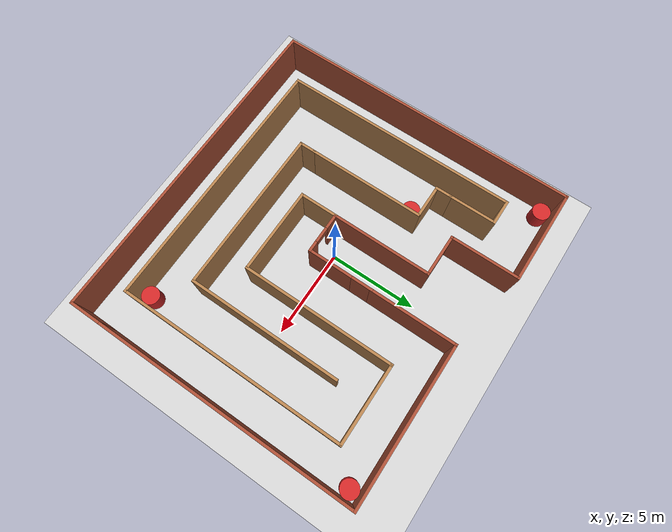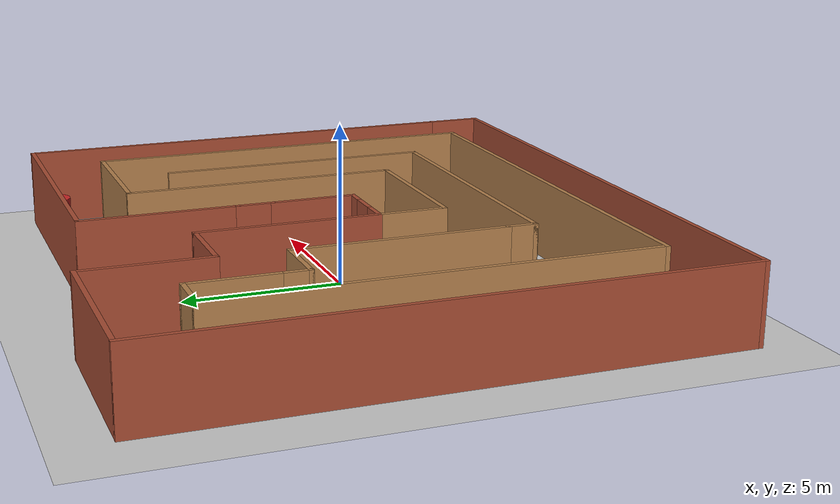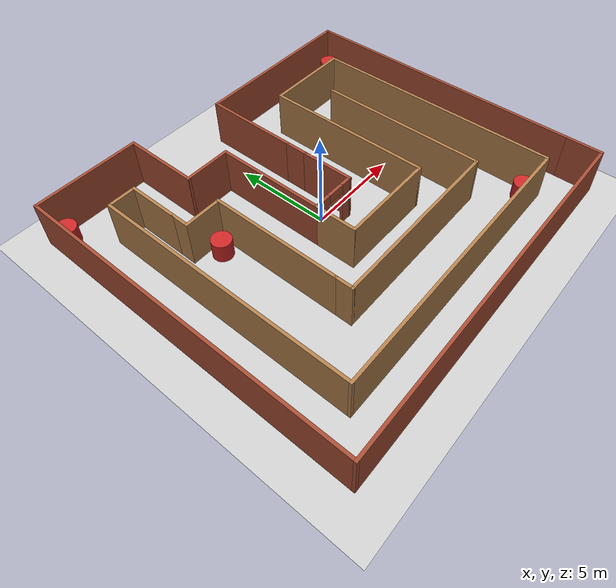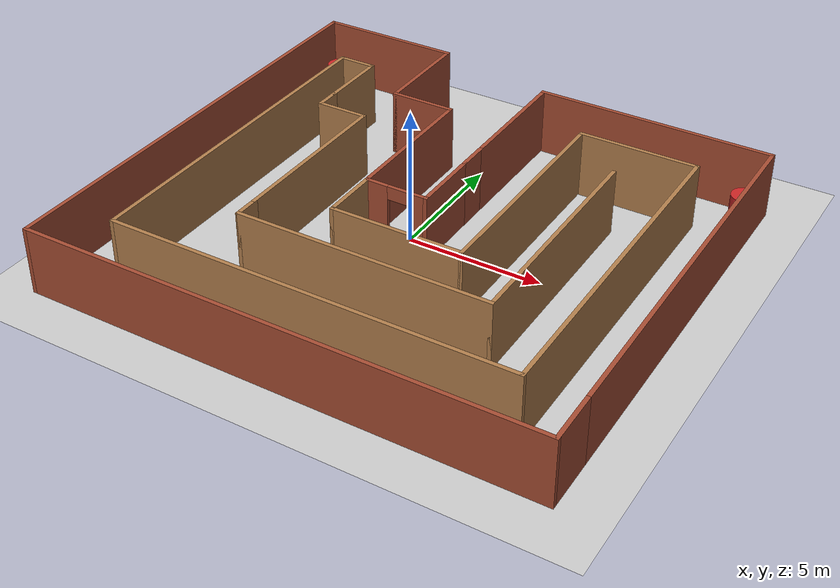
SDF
<sdf version="1.6">
 <world name="default">
  <light name="sun" type="directional">
   <pose>0 0 10 0 -0 0</pose>
   <diffuse>0.8 0.8 0.8 1</diffuse>
   <specular>0.1 0.1 0.1 1</specular>
   <attenuation>
    <range>1000</range>
    <constant>0.9</constant>
    <linear>0.01</linear>
    <quadratic>0.001</quadratic>
   </attenuation>
   <direction>-0.5 0.5 -1</direction>
  </light>
  <model name="ground_plane">
   <static>1</static>
   <link name="link">
    <collision name="collision">
     <geometry><plane><normal>0 0 1</normal><size>100 100</size></plane></geometry>
     <surface><friction><ode><mu>100</mu><mu2>50</mu2></ode></friction></surface>
    </collision>
    <visual name="visual">
     <cast_shadows>0</cast_shadows>
     <geometry><plane><normal>0 0 1</normal><size>100 100</size></plane></geometry>
     <material>
      <script><uri>file://media/materials/scripts/gazebo.material</uri><name>Gazebo/Grey</name></script>
     </material>
    </visual>
   </link>
  </model>
  <physics name="default_physics" default="0" type="ode">
   <real_time_update_rate>1000</real_time_update_rate>
   <max_step_size>0.001</max_step_size>
   <real_time_factor>1</real_time_factor>
   <ode>
    <solver>
     <type>quick</type>
     <iters>150</iters>
     <precon_iters>0</precon_iters>
     <sor>1.4</sor>
     <use_dynamic_moi_rescaling>1</use_dynamic_moi_rescaling>
    </solver>
    <constraints>
     <cfm>1e-05</cfm>
     <erp>0.2</erp>
     <contact_max_correcting_vel>2000</contact_max_correcting_vel>
     <contact_surface_layer>0.01</contact_surface_layer>
    </constraints>
   </ode>
  </physics>
  <gravity>0 0 -9.8</gravity>
  <magnetic_field>6e-06 2.3e-05 -4.2e-05</magnetic_field>
  <atmosphere type="adiabatic"/>
  <scene><ambient>0.4 0.4 0.4 1</ambient><background>0.7 0.7 0.7 1</background><shadows>1</shadows></scene>
  <spherical_coordinates>
   <surface_model>EARTH_WGS84</surface_model>
   <latitude_deg>0</latitude_deg>
   <longitude_deg>0</longitude_deg>
   <elevation>0</elevation>
   <heading_deg>0</heading_deg>
  </spherical_coordinates>
  <model name="Maze_buildingEditor">
   <pose>0.495 -0.14 0 0 -0 0</pose>
   <link name="Wall_1">
    <collision name="Wall_1_Collision">
     <geometry><box><size>2.75 0.15 2.5</size></box></geometry>
     <pose>0 0 1.25 0 -0 0</pose>
    </collision>
    <visual name="Wall_1_Visual">
     <pose>0 0 1.25 0 -0 0</pose>
     <geometry><box><size>2.75 0.15 2.5</size></box></geometry>
     <material>
      <script><uri>file://media/materials/scripts/gazebo.material</uri><name>Gazebo/Bricks</name></script>
      <ambient>1 1 1 1</ambient>
     </material>
    </visual>
    <pose>0.575 0.65 0 0 -0 1.5708</pose>
   </link>
   <link name="Wall_11">
    <collision name="Wall_11_Collision">
     <geometry><box><size>17.75 0.15 2.5</size></box></geometry>
     <pose>0 0 1.25 0 -0 0</pose>
    </collision>
    <visual name="Wall_11_Visual">
     <pose>0 0 1.25 0 -0 0</pose>
     <geometry><box><size>17.75 0.15 2.5</size></box></geometry>
     <material>
      <script><uri>file://media/materials/scripts/gazebo.material</uri><name>Gazebo/Bricks</name></script>
      <ambient>1 1 1 1</ambient>
     </material>
    </visual>
    <pose>-9.425 0 0 0 -0 1.5708</pose>
   </link>
   <link name="Wall_12">
    <collision name="Wall_12_Collision">
     <geometry><box><size>5.5 0.15 2.5</size></box></geometry>
     <pose>0 0 1.25 0 -0 0</pose>
    </collision>
    <visual name="Wall_12_Visual">
     <pose>0 0 1.25 0 -0 0</pose>
     <geometry><box><size>5.5 0.15 2.5</size></box></geometry>
     <material>
      <script><uri>file://media/materials/scripts/gazebo.material</uri><name>Gazebo/Bricks</name></script>
      <ambient>1 1 1 1</ambient>
     </material>
    </visual>
    <pose>-6.75 8.8 0 0 -0 0</pose>
   </link>
   <link name="Wall_13">
    <collision name="Wall_13_Collision">
     <geometry><box><size>4 0.15 2.5</size></box></geometry>
     <pose>0 0 1.25 0 -0 0</pose>
    </collision>
    <visual name="Wall_13_Visual">
     <pose>0 0 1.25 0 -0 0</pose>
     <geometry><box><size>4 0.15 2.5</size></box></geometry>
     <material>
      <script><uri>file://media/materials/scripts/gazebo.material</uri><name>Gazebo/Bricks</name></script>
      <ambient>1 1 1 1</ambient>
     </material>
    </visual>
    <pose>-4.075 6.875 0 0 0 -1.5708</pose>
   </link>
   <link name="Wall_14">
    <collision name="Wall_14_Collision">
     <geometry><box><size>2.5 0.15 2.5</size></box></geometry>
     <pose>0 0 1.25 0 -0 0</pose>
    </collision>
    <visual name="Wall_14_Visual">
     <pose>0 0 1.25 0 -0 0</pose>
     <geometry><box><size>2.5 0.15 2.5</size></box></geometry>
     <material>
      <script><uri>file://media/materials/scripts/gazebo.material</uri><name>Gazebo/Bricks</name></script>
      <ambient>1 1 1 1</ambient>
     </material>
    </visual>
    <pose>-2.9 4.95 0 0 -0 0</pose>
   </link>
   <link name="Wall_15">
    <collision name="Wall_15_Collision">
     <geometry><box><size>5.75 0.15 2.5</size></box></geometry>
     <pose>0 0 1.25 0 -0 0</pose>
    </collision>
    <visual name="Wall_15_Visual">
     <pose>0 0 1.25 0 -0 0</pose>
     <geometry><box><size>5.75 0.15 2.5</size></box></geometry>
     <material>
      <script><uri>file://media/materials/scripts/gazebo.material</uri><name>Gazebo/Bricks</name></script>
      <ambient>1 1 1 1</ambient>
     </material>
    </visual>
    <pose>-1.725 2.15 0 0 0 -1.5708</pose>
   </link>
   <link name="Wall_18">
    <pose>-0.575 -0.65 0 0 -0 0</pose>
    <visual name="Wall_18_Visual_0">
     <pose>-0.771318 0 1.25 0 -0 0</pose>
     <geometry><box><size>0.907363 0.15 2.5</size></box></geometry>
     <material>
      <script><uri>file://media/materials/scripts/gazebo.material</uri><name>Gazebo/Bricks</name></script>
      <ambient>1 1 1 1</ambient>
     </material>
    </visual>
    <collision name="Wall_18_Collision_0">
     <geometry><box><size>0.907363 0.15 2.5</size></box></geometry>
     <pose>-0.771318 0 1.25 0 -0 0</pose>
    </collision>
    <visual name="Wall_18_Visual_1">
     <pose>0.903682 0 1.25 0 -0 0</pose>
     <geometry><box><size>0.642637 0.15 2.5</size></box></geometry>
     <material>
      <script><uri>file://media/materials/scripts/gazebo.material</uri><name>Gazebo/Bricks</name></script>
      <ambient>1 1 1 1</ambient>
     </material>
    </visual>
    <collision name="Wall_18_Collision_1">
     <geometry><box><size>0.642637 0.15 2.5</size></box></geometry>
     <pose>0.903682 0 1.25 0 -0 0</pose>
    </collision>
    <visual name="Wall_18_Visual_2">
     <pose>0.132363 0 2.25 0 -0 0</pose>
     <geometry><box><size>0.9 0.15 0.5</size></box></geometry>
     <material>
      <script><uri>file://media/materials/scripts/gazebo.material</uri><name>Gazebo/Bricks</name></script>
      <ambient>1 1 1 1</ambient>
     </material>
    </visual>
    <collision name="Wall_18_Collision_2">
     <geometry><box><size>0.9 0.15 0.5</size></box></geometry>
     <pose>0.132363 0 2.25 0 -0 0</pose>
    </collision>
   </link>
   <link name="Wall_2">
    <collision name="Wall_2_Collision">
     <geometry><box><size>1.25 0.15 2.5</size></box></geometry>
     <pose>0 0 1.25 0 -0 0</pose>
    </collision>
    <visual name="Wall_2_Visual">
     <pose>0 0 1.25 0 -0 0</pose>
     <geometry><box><size>1.25 0.15 2.5</size></box></geometry>
     <material>
      <script><uri>file://media/materials/scripts/gazebo.material</uri><name>Gazebo/Bricks</name></script>
      <ambient>1 1 1 1</ambient>
     </material>
    </visual>
    <pose>0.575 2.5 0 0 -0 1.5708</pose>
   </link>
   <link name="Wall_20">
    <collision name="Wall_20_Collision">
     <geometry><box><size>2.25 0.15 2.5</size></box></geometry>
     <pose>0 0 1.25 0 -0 0</pose>
    </collision>
    <visual name="Wall_20_Visual">
     <pose>0 0 1.25 0 -0 0</pose>
     <geometry><box><size>2.25 0.15 2.5</size></box></geometry>
     <material>
      <script><uri>file://media/materials/scripts/gazebo.material</uri><name>Gazebo/Wood</name></script>
      <ambient>1 1 1 1</ambient>
     </material>
    </visual>
    <pose>-1.725 -1.7 0 0 0 -1.5708</pose>
   </link>
   <link name="Wall_21">
    <collision name="Wall_21_Collision">
     <geometry><box><size>5 0.15 2.5</size></box></geometry>
     <pose>0 0 1.25 0 -0 0</pose>
    </collision>
    <visual name="Wall_21_Visual">
     <pose>0 0 1.25 0 -0 0</pose>
     <geometry><box><size>5 0.15 2.5</size></box></geometry>
     <material>
      <script><uri>file://media/materials/scripts/gazebo.material</uri><name>Gazebo/Wood</name></script>
      <ambient>1 1 1 1</ambient>
     </material>
    </visual>
    <pose>0.7 -2.75 0 0 -0 0</pose>
   </link>
   <link name="Wall_22">
    <collision name="Wall_22_Collision">
     <geometry><box><size>8.75 0.15 2.5</size></box></geometry>
     <pose>0 0 1.25 0 -0 0</pose>
    </collision>
    <visual name="Wall_22_Visual">
     <pose>0 0 1.25 0 -0 0</pose>
     <geometry><box><size>8.75 0.15 2.5</size></box></geometry>
     <material>
      <script><uri>file://media/materials/scripts/gazebo.material</uri><name>Gazebo/Wood</name></script>
      <ambient>1 1 1 1</ambient>
     </material>
    </visual>
    <pose>3.125 1.55 0 0 -0 1.5708</pose>
   </link>
   <link name="Wall_23">
    <collision name="Wall_23_Collision">
     <geometry><box><size>4.5 0.15 2.5</size></box></geometry>
     <pose>0 0 1.25 0 -0 0</pose>
    </collision>
    <visual name="Wall_23_Visual">
     <pose>0 0 1.25 0 -0 0</pose>
     <geometry><box><size>4.5 0.15 2.5</size></box></geometry>
     <material>
      <script><uri>file://media/materials/scripts/gazebo.material</uri><name>Gazebo/Wood</name></script>
      <ambient>1 1 1 1</ambient>
     </material>
    </visual>
    <pose>5.3 5.85 0 0 -0 0</pose>
   </link>
   <link name="Wall_24">
    <collision name="Wall_24_Collision">
     <geometry><box><size>13 0.15 2.5</size></box></geometry>
     <pose>0 0 1.25 0 -0 0</pose>
    </collision>
    <visual name="Wall_24_Visual">
     <pose>0 0 1.25 0 -0 0</pose>
     <geometry><box><size>13 0.15 2.5</size></box></geometry>
     <material>
      <script><uri>file://media/materials/scripts/gazebo.material</uri><name>Gazebo/Wood</name></script>
      <ambient>1 1 1 1</ambient>
     </material>
    </visual>
    <pose>7.475 -0.575 0 0 0 -1.5708</pose>
   </link>
   <link name="Wall_25">
    <collision name="Wall_25_Collision">
     <geometry><box><size>15 0.15 2.5</size></box></geometry>
     <pose>0 0 1.25 0 -0 0</pose>
    </collision>
    <visual name="Wall_25_Visual">
     <pose>0 0 1.25 0 -0 0</pose>
     <geometry><box><size>15 0.15 2.5</size></box></geometry>
     <material>
      <script><uri>file://media/materials/scripts/gazebo.material</uri><name>Gazebo/Wood</name></script>
      <ambient>1 1 1 1</ambient>
     </material>
    </visual>
    <pose>0.05 -7 0 0 -0 3.14159</pose>
   </link>
   <link name="Wall_26">
    <collision name="Wall_26_Collision">
     <geometry><box><size>13.5 0.15 2.5</size></box></geometry>
     <pose>0 0 1.25 0 -0 0</pose>
    </collision>
    <visual name="Wall_26_Visual">
     <pose>0 0 1.25 0 -0 0</pose>
     <geometry><box><size>13.5 0.15 2.5</size></box></geometry>
     <material>
      <script><uri>file://media/materials/scripts/gazebo.material</uri><name>Gazebo/Wood</name></script>
      <ambient>1 1 1 1</ambient>
     </material>
    </visual>
    <pose>-7.375 -0.325 0 0 -0 1.5708</pose>
   </link>
   <link name="Wall_27">
    <collision name="Wall_27_Collision">
     <geometry><box><size>1.5 0.15 2.5</size></box></geometry>
     <pose>0 0 1.25 0 -0 0</pose>
    </collision>
    <visual name="Wall_27_Visual">
     <pose>0 0 1.25 0 -0 0</pose>
     <geometry><box><size>1.5 0.15 2.5</size></box></geometry>
     <material>
      <script><uri>file://media/materials/scripts/gazebo.material</uri><name>Gazebo/Wood</name></script>
      <ambient>1 1 1 1</ambient>
     </material>
    </visual>
    <pose>-6.7 6.35 0 0 -0 0</pose>
   </link>
   <link name="Wall_28">
    <collision name="Wall_28_Collision">
     <geometry><box><size>2.75 0.15 2.5</size></box></geometry>
     <pose>0 0 1.25 0 -0 0</pose>
    </collision>
    <visual name="Wall_28_Visual">
     <pose>0 0 1.25 0 -0 0</pose>
     <geometry><box><size>2.75 0.15 2.5</size></box></geometry>
     <material>
      <script><uri>file://media/materials/scripts/gazebo.material</uri><name>Gazebo/Wood</name></script>
      <ambient>1 1 1 1</ambient>
     </material>
    </visual>
    <pose>-6.025 5.05 0 0 0 -1.5708</pose>
   </link>
   <link name="Wall_29">
    <collision name="Wall_29_Collision">
     <geometry><box><size>1 0.15 2.5</size></box></geometry>
     <pose>0 0 1.25 0 -0 0</pose>
    </collision>
    <visual name="Wall_29_Visual">
     <pose>0 0 1.25 0 -0 0</pose>
     <geometry><box><size>1 0.15 2.5</size></box></geometry>
     <material>
      <script><uri>file://media/materials/scripts/gazebo.material</uri><name>Gazebo/Wood</name></script>
      <ambient>1 1 1 1</ambient>
     </material>
    </visual>
    <pose>-6.025 3.325 0 0 0 -1.5708</pose>
   </link>
   <link name="Wall_3">
    <collision name="Wall_3_Collision">
     <geometry><box><size>5 0.15 2.5</size></box></geometry>
     <pose>0 0 1.25 0 -0 0</pose>
    </collision>
    <visual name="Wall_3_Visual">
     <pose>0 0 1.25 0 -0 0</pose>
     <geometry><box><size>5 0.15 2.5</size></box></geometry>
     <material>
      <script><uri>file://media/materials/scripts/gazebo.material</uri><name>Gazebo/Bricks</name></script>
      <ambient>1 1 1 1</ambient>
     </material>
    </visual>
    <pose>0.575 5.475 0 0 -0 1.5708</pose>
   </link>
   <link name="Wall_30">
    <collision name="Wall_30_Collision">
     <geometry><box><size>2 0.15 2.5</size></box></geometry>
     <pose>0 0 1.25 0 -0 0</pose>
    </collision>
    <visual name="Wall_30_Visual">
     <pose>0 0 1.25 0 -0 0</pose>
     <geometry><box><size>2 0.15 2.5</size></box></geometry>
     <material>
      <script><uri>file://media/materials/scripts/gazebo.material</uri><name>Gazebo/Wood</name></script>
      <ambient>1 1 1 1</ambient>
     </material>
    </visual>
    <pose>-5.1 2.9 0 0 -0 0</pose>
   </link>
   <link name="Wall_31">
    <collision name="Wall_31_Collision">
     <geometry><box><size>6.75 0.15 2.5</size></box></geometry>
     <pose>0 0 1.25 0 -0 0</pose>
    </collision>
    <visual name="Wall_31_Visual">
     <pose>0 0 1.25 0 -0 0</pose>
     <geometry><box><size>6.75 0.15 2.5</size></box></geometry>
     <material>
      <script><uri>file://media/materials/scripts/gazebo.material</uri><name>Gazebo/Wood</name></script>
      <ambient>1 1 1 1</ambient>
     </material>
    </visual>
    <pose>-4.175 -0.4 0 0 0 -1.5708</pose>
   </link>
   <link name="Wall_32">
    <collision name="Wall_32_Collision">
     <geometry><box><size>1 0.15 2.5</size></box></geometry>
     <pose>0 0 1.25 0 -0 0</pose>
    </collision>
    <visual name="Wall_32_Visual">
     <pose>0 0 1.25 0 -0 0</pose>
     <geometry><box><size>1 0.15 2.5</size></box></geometry>
     <material>
      <script><uri>file://media/materials/scripts/gazebo.material</uri><name>Gazebo/Wood</name></script>
      <ambient>1 1 1 1</ambient>
     </material>
    </visual>
    <pose>-4.175 -4.125 0 0 0 -1.5708</pose>
   </link>
   <link name="Wall_33">
    <collision name="Wall_33_Collision">
     <geometry><box><size>9.5 0.15 2.5</size></box></geometry>
     <pose>0 0 1.25 0 -0 0</pose>
    </collision>
    <visual name="Wall_33_Visual">
     <pose>0 0 1.25 0 -0 0</pose>
     <geometry><box><size>9.5 0.15 2.5</size></box></geometry>
     <material>
      <script><uri>file://media/materials/scripts/gazebo.material</uri><name>Gazebo/Wood</name></script>
      <ambient>1 1 1 1</ambient>
     </material>
    </visual>
    <pose>0.5 -4.55 0 0 -0 0</pose>
   </link>
   <link name="Wall_34">
    <collision name="Wall_34_Collision">
     <geometry><box><size>8.75 0.15 2.5</size></box></geometry>
     <pose>0 0 1.25 0 -0 0</pose>
    </collision>
    <visual name="Wall_34_Visual">
     <pose>0 0 1.25 0 -0 0</pose>
     <geometry><box><size>8.75 0.15 2.5</size></box></geometry>
     <material>
      <script><uri>file://media/materials/scripts/gazebo.material</uri><name>Gazebo/Wood</name></script>
      <ambient>1 1 1 1</ambient>
     </material>
    </visual>
    <pose>5.175 -0.25 0 0 -0 1.5708</pose>
   </link>
   <link name="Wall_6">
    <collision name="Wall_6_Collision">
     <geometry><box><size>9 0.15 2.5</size></box></geometry>
     <pose>0 0 1.25 0 -0 0</pose>
    </collision>
    <visual name="Wall_6_Visual">
     <pose>0 0 1.25 0 -0 0</pose>
     <geometry><box><size>9 0.15 2.5</size></box></geometry>
     <material>
      <script><uri>file://media/materials/scripts/gazebo.material</uri><name>Gazebo/Bricks</name></script>
      <ambient>1 1 1 1</ambient>
     </material>
    </visual>
    <pose>5 7.9 0 0 -0 0</pose>
   </link>
   <link name="Wall_7">
    <collision name="Wall_7_Collision">
     <geometry><box><size>15 0.15 2.5</size></box></geometry>
     <pose>0 0 1.25 0 -0 0</pose>
    </collision>
    <visual name="Wall_7_Visual">
     <pose>0 0 1.25 0 -0 0</pose>
     <geometry><box><size>15 0.15 2.5</size></box></geometry>
     <material>
      <script><uri>file://media/materials/scripts/gazebo.material</uri><name>Gazebo/Bricks</name></script>
      <ambient>1 1 1 1</ambient>
     </material>
    </visual>
    <pose>9.425 0.475 0 0 0 -1.5708</pose>
   </link>
   <link name="Wall_8">
    <collision name="Wall_8_Collision">
     <geometry><box><size>2 0.15 2.5</size></box></geometry>
     <pose>0 0 1.25 0 -0 0</pose>
    </collision>
    <visual name="Wall_8_Visual">
     <pose>0 0 1.25 0 -0 0</pose>
     <geometry><box><size>2 0.15 2.5</size></box></geometry>
     <material>
      <script><uri>file://media/materials/scripts/gazebo.material</uri><name>Gazebo/Bricks</name></script>
      <ambient>1 1 1 1</ambient>
     </material>
    </visual>
    <pose>9.425 -7.875 0 0 0 -1.5708</pose>
   </link>
   <link name="Wall_9">
    <collision name="Wall_9_Collision">
     <geometry><box><size>19 0.15 2.5</size></box></geometry>
     <pose>0 0 1.25 0 -0 0</pose>
    </collision>
    <visual name="Wall_9_Visual">
     <pose>0 0 1.25 0 -0 0</pose>
     <geometry><box><size>19 0.15 2.5</size></box></geometry>
     <material>
      <script><uri>file://media/materials/scripts/gazebo.material</uri><name>Gazebo/Bricks</name></script>
      <ambient>1 1 1 1</ambient>
     </material>
    </visual>
    <pose>0 -8.8 0 0 -0 3.14159</pose>
   </link>
   <static>1</static>
  </model>
  <model name="unit_cylinder_0">
   <pose>-8.2985 8.085 0.499992 1e-06 1e-06 -2e-06</pose>
   <link name="link">
    <inertial>
     <mass>1</mass>
     <inertia><ixx>0.145833</ixx><ixy>0</ixy><ixz>0</ixz><iyy>0.145833</iyy><iyz>0</iyz><izz>0.125</izz></inertia>
    </inertial>
    <collision name="collision">
     <geometry><cylinder><radius>0.5</radius><length>1</length></cylinder></geometry>
    </collision>
    <visual name="visual">
     <geometry><cylinder><radius>0.5</radius><length>1</length></cylinder></geometry>
     <material>
      <script><name>Gazebo/Red</name><uri>file://media/materials/scripts/gazebo.material</uri></script>
     </material>
    </visual>
   </link>
  </model>
  <model name="unit_cylinder_1">
   <pose>-4.37521 2.11072 0.499993 4e-06 4e-06 -0</pose>
   <link name="link">
    <inertial>
     <mass>1</mass>
     <inertia><ixx>0.145833</ixx><ixy>0</ixy><ixz>0</ixz><iyy>0.145833</iyy><iyz>0</iyz><izz>0.125</izz></inertia>
    </inertial>
    <collision name="collision">
     <geometry><cylinder><radius>0.5</radius><length>1</length></cylinder></geometry>
    </collision>
    <visual name="visual">
     <geometry><cylinder><radius>0.5</radius><length>1</length></cylinder></geometry>
     <material>
      <script><name>Gazebo/Red</name><uri>file://media/materials/scripts/gazebo.material</uri></script>
     </material>
    </visual>
   </link>
  </model>
  <model name="unit_cylinder_2">
   <pose>9.34502 7.16389 0.499993 4e-06 4e-06 -0</pose>
   <link name="link">
    <inertial>
     <mass>1</mass>
     <inertia><ixx>0.145833</ixx><ixy>0</ixy><ixz>0</ixz><iyy>0.145833</iyy><iyz>0</iyz><izz>0.125</izz></inertia>
    </inertial>
    <collision name="collision">
     <geometry><cylinder><radius>0.5</radius><length>1</length></cylinder></geometry>
    </collision>
    <visual name="visual">
     <geometry><cylinder><radius>0.5</radius><length>1</length></cylinder></geometry>
     <material>
      <script><name>Gazebo/Red</name><uri>file://media/materials/scripts/gazebo.material</uri></script>
     </material>
    </visual>
   </link>
  </model>
  <model name="unit_cylinder_3">
   <pose>7.39497 -6.56502 0.5 0 0 -0.005542</pose>
   <link name="link">
    <inertial>
     <mass>1</mass>
     <inertia><ixx>0.145833</ixx><ixy>0</ixy><ixz>0</ixz><iyy>0.145833</iyy><iyz>0</iyz><izz>0.125</izz></inertia>
    </inertial>
    <collision name="collision">
     <geometry><cylinder><radius>0.5</radius><length>1</length></cylinder></geometry>
    </collision>
    <visual name="visual">
     <geometry><cylinder><radius>0.5</radius><length>1</length></cylinder></geometry>
     <material>
      <script><name>Gazebo/Red</name><uri>file://media/materials/scripts/gazebo.material</uri></script>
     </material>
    </visual>
   </link>
  </model>
 </world>
</sdf>
